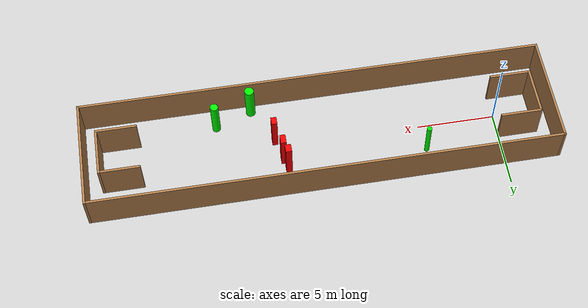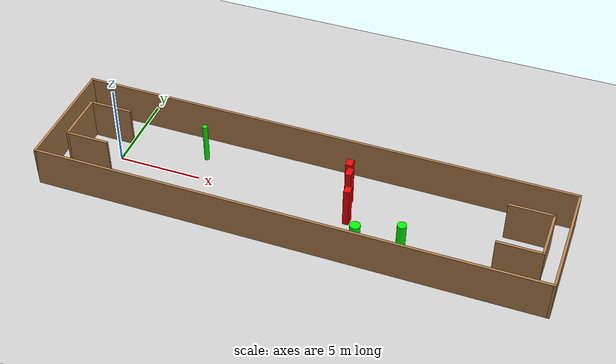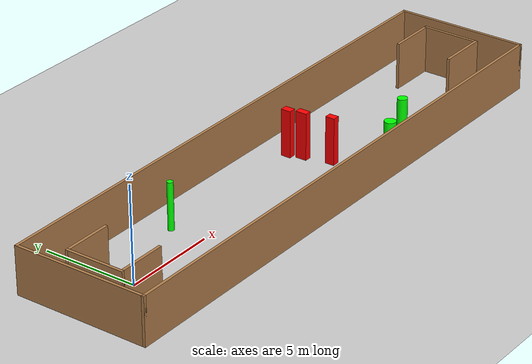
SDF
<sdf version="1.7">
 <world name="default">
  <light name="sun" type="directional">
   <pose>0 0 10 0 -0 0</pose>
   <diffuse>0.8 0.8 0.8 1</diffuse>
   <specular>0.2 0.2 0.2 1</specular>
   <attenuation>
    <range>1000</range>
    <constant>0.9</constant>
    <linear>0.01</linear>
    <quadratic>0.001</quadratic>
   </attenuation>
   <direction>-0.5 0.1 -0.9</direction>
   <spot><inner_angle>0</inner_angle><outer_angle>0</outer_angle><falloff>0</falloff></spot>
  </light>
  <model name="ground_plane">
   <static>1</static>
   <link name="link">
    <collision name="collision">
     <geometry><plane><normal>0 0 1</normal><size>100 100</size></plane></geometry>
     <surface>
      <contact><collide_bitmask>65535</collide_bitmask></contact>
      <friction><ode><mu>100</mu><mu2>50</mu2></ode></friction>
     </surface>
    </collision>
    <visual name="visual">
     <cast_shadows>0</cast_shadows>
     <geometry><plane><normal>0 0 1</normal><size>100 100</size></plane></geometry>
     <material>
      <script><uri>file://media/materials/scripts/gazebo.material</uri><name>Gazebo/Grey</name></script>
     </material>
    </visual>
   </link>
  </model>
  <gravity>0 0 -9.8</gravity>
  <magnetic_field>6e-06 2.3e-05 -4.2e-05</magnetic_field>
  <atmosphere type="adiabatic"/>
  <physics type="ode">
   <max_step_size>0.001</max_step_size>
   <real_time_factor>1</real_time_factor>
   <real_time_update_rate>1000</real_time_update_rate>
  </physics>
  <scene><ambient>0.4 0.4 0.4 1</ambient><background>0.7 0.7 0.7 1</background><shadows>1</shadows></scene>
  <spherical_coordinates>
   <surface_model>EARTH_WGS84</surface_model>
   <latitude_deg>0</latitude_deg>
   <longitude_deg>0</longitude_deg>
   <elevation>0</elevation>
   <heading_deg>0</heading_deg>
  </spherical_coordinates>
  <model name="my_base_walls">
   <link name="Wall_0">
    <collision name="Wall_0_Collision">
     <geometry><box><size>7.15 0.15 2.5</size></box></geometry>
     <pose>0 0 1.25 0 -0 0</pose>
    </collision>
    <visual name="Wall_0_Visual">
     <pose>0 0 1.25 0 -0 0</pose>
     <geometry><box><size>7.15 0.15 2.5</size></box></geometry>
     <material>
      <script><uri>file://media/materials/scripts/gazebo.material</uri><name>Gazebo/Wood</name></script>
      <ambient>1 1 1 1</ambient>
     </material>
     <meta><layer>0</layer></meta>
    </visual>
    <pose>-15 0 0 0 -0 1.5708</pose>
   </link>
   <link name="Wall_10">
    <collision name="Wall_10_Collision">
     <geometry><box><size>2.65 0.15 2.5</size></box></geometry>
     <pose>0 0 1.25 0 -0 0</pose>
    </collision>
    <visual name="Wall_10_Visual">
     <pose>0 0 1.25 0 -0 0</pose>
     <geometry><box><size>2.65 0.15 2.5</size></box></geometry>
     <material>
      <script><uri>file://media/materials/scripts/gazebo.material</uri><name>Gazebo/Wood</name></script>
      <ambient>1 1 1 1</ambient>
     </material>
     <meta><layer>0</layer></meta>
    </visual>
    <pose>-12.75 -1.5 0 0 -0 0</pose>
   </link>
   <link name="Wall_12">
    <collision name="Wall_12_Collision">
     <geometry><box><size>2.65 0.15 2.5</size></box></geometry>
     <pose>0 0 1.25 0 -0 0</pose>
    </collision>
    <visual name="Wall_12_Visual">
     <pose>0 0 1.25 0 -0 0</pose>
     <geometry><box><size>2.65 0.15 2.5</size></box></geometry>
     <material>
      <script><uri>file://media/materials/scripts/gazebo.material</uri><name>Gazebo/Wood</name></script>
      <ambient>1 1 1 1</ambient>
     </material>
     <meta><layer>0</layer></meta>
    </visual>
    <pose>-12.75 1.5 0 0 -0 0</pose>
   </link>
   <link name="Wall_14">
    <collision name="Wall_14_Collision">
     <geometry><box><size>3.15 0.15 2.5</size></box></geometry>
     <pose>0 0 1.25 0 -0 0</pose>
    </collision>
    <visual name="Wall_14_Visual">
     <pose>0 0 1.25 0 -0 0</pose>
     <geometry><box><size>3.15 0.15 2.5</size></box></geometry>
     <material>
      <script><uri>file://media/materials/scripts/gazebo.material</uri><name>Gazebo/Wood</name></script>
      <ambient>1 1 1 1</ambient>
     </material>
     <meta><layer>0</layer></meta>
    </visual>
    <pose>14 0 0 0 -0 -1.5708</pose>
   </link>
   <link name="Wall_15">
    <collision name="Wall_15_Collision">
     <geometry><box><size>2.65 0.15 2.5</size></box></geometry>
     <pose>0 0 1.25 0 -0 0</pose>
    </collision>
    <visual name="Wall_15_Visual">
     <pose>0 0 1.25 0 -0 0</pose>
     <geometry><box><size>2.65 0.15 2.5</size></box></geometry>
     <material>
      <script><uri>file://media/materials/scripts/gazebo.material</uri><name>Gazebo/Wood</name></script>
      <ambient>1 1 1 1</ambient>
     </material>
     <meta><layer>0</layer></meta>
    </visual>
    <pose>12.75 -1.5 0 0 -0 3.14159</pose>
   </link>
   <link name="Wall_17">
    <collision name="Wall_17_Collision">
     <geometry><box><size>2.65 0.15 2.5</size></box></geometry>
     <pose>0 0 1.25 0 -0 0</pose>
    </collision>
    <visual name="Wall_17_Visual">
     <pose>0 0 1.25 0 -0 0</pose>
     <geometry><box><size>2.65 0.15 2.5</size></box></geometry>
     <material>
      <script><uri>file://media/materials/scripts/gazebo.material</uri><name>Gazebo/Wood</name></script>
      <ambient>1 1 1 1</ambient>
     </material>
     <meta><layer>0</layer></meta>
    </visual>
    <pose>12.75 1.5 0 0 -0 3.14159</pose>
   </link>
   <link name="Wall_2">
    <collision name="Wall_2_Collision">
     <geometry><box><size>30.15 0.15 2.5</size></box></geometry>
     <pose>0 0 1.25 0 -0 0</pose>
    </collision>
    <visual name="Wall_2_Visual">
     <pose>0 0 1.25 0 -0 0</pose>
     <geometry><box><size>30.15 0.15 2.5</size></box></geometry>
     <material>
      <script><uri>file://media/materials/scripts/gazebo.material</uri><name>Gazebo/Wood</name></script>
      <ambient>1 1 1 1</ambient>
     </material>
     <meta><layer>0</layer></meta>
    </visual>
    <pose>-0 -3.5 0 0 -0 0</pose>
   </link>
   <link name="Wall_4">
    <collision name="Wall_4_Collision">
     <geometry><box><size>30.15 0.15 2.5</size></box></geometry>
     <pose>0 0 1.25 0 -0 0</pose>
    </collision>
    <visual name="Wall_4_Visual">
     <pose>0 0 1.25 0 -0 0</pose>
     <geometry><box><size>30.15 0.15 2.5</size></box></geometry>
     <material>
      <script><uri>file://media/materials/scripts/gazebo.material</uri><name>Gazebo/Wood</name></script>
      <ambient>1 1 1 1</ambient>
     </material>
     <meta><layer>0</layer></meta>
    </visual>
    <pose>-0 3.5 0 0 -0 0</pose>
   </link>
   <link name="Wall_6">
    <collision name="Wall_6_Collision">
     <geometry><box><size>7.15 0.15 2.5</size></box></geometry>
     <pose>0 0 1.25 0 -0 0</pose>
    </collision>
    <visual name="Wall_6_Visual">
     <pose>0 0 1.25 0 -0 0</pose>
     <geometry><box><size>7.15 0.15 2.5</size></box></geometry>
     <material>
      <script><uri>file://media/materials/scripts/gazebo.material</uri><name>Gazebo/Wood</name></script>
      <ambient>1 1 1 1</ambient>
     </material>
     <meta><layer>0</layer></meta>
    </visual>
    <pose>15 0 0 0 -0 -1.5708</pose>
   </link>
   <link name="Wall_9">
    <collision name="Wall_9_Collision">
     <geometry><box><size>3.15 0.15 2.5</size></box></geometry>
     <pose>0 0 1.25 0 -0 0</pose>
    </collision>
    <visual name="Wall_9_Visual">
     <pose>0 0 1.25 0 -0 0</pose>
     <geometry><box><size>3.15 0.15 2.5</size></box></geometry>
     <material>
      <script><uri>file://media/materials/scripts/gazebo.material</uri><name>Gazebo/Wood</name></script>
      <ambient>1 1 1 1</ambient>
     </material>
     <meta><layer>0</layer></meta>
    </visual>
    <pose>-14 0 0 0 -0 -1.5708</pose>
   </link>
   <static>1</static>
   <pose>11.5 0 0 0 -0 0</pose>
  </model>
  <model name="cylinder1">
   <static>1</static>
   <link name="link">
    <inertial>
     <mass>1</mass>
     <inertia><ixx>0.5</ixx><ixy>0</ixy><ixz>0</ixz><iyy>0.5</iyy><iyz>0</iyz><izz>1</izz></inertia>
    </inertial>
    <collision name="collision">
     <geometry><cylinder><radius>0.15469169097609312</radius><length>2.5</length></cylinder></geometry>
    </collision>
    <visual name="visual">
     <geometry><cylinder><radius>0.15469169097609312</radius><length>2.5</length></cylinder></geometry>
     <material>
      <ambient>0 1 0 1</ambient>
      <diffuse>0 1 0 1</diffuse>
      <specular>0.1 0.1 0.1 1</specular>
      <emissive>0 0 0 0</emissive>
     </material>
    </visual>
   </link>
   <pose>4.7878194010815545 1.7496242749236677 1.25 0 0 0</pose>
  </model>
  <model name="cylinder2">
   <static>1</static>
   <link name="link">
    <inertial>
     <mass>1</mass>
     <inertia><ixx>0.5</ixx><ixy>0</ixy><ixz>0</ixz><iyy>0.5</iyy><iyz>0</iyz><izz>1</izz></inertia>
    </inertial>
    <collision name="collision">
     <geometry><cylinder><radius>0.29993115730866693</radius><length>2.5</length></cylinder></geometry>
    </collision>
    <visual name="visual">
     <geometry><cylinder><radius>0.29993115730866693</radius><length>2.5</length></cylinder></geometry>
     <material>
      <ambient>0 1 0 1</ambient>
      <diffuse>0 1 0 1</diffuse>
      <specular>0.1 0.1 0.1 1</specular>
      <emissive>0 0 0 0</emissive>
     </material>
    </visual>
   </link>
   <pose>15.596760338910716 -2.929256186164744 1.25 0 0 0</pose>
  </model>
  <model name="cylinder3">
   <static>1</static>
   <link name="link">
    <inertial>
     <mass>1</mass>
     <inertia><ixx>0.5</ixx><ixy>0</ixy><ixz>0</ixz><iyy>0.5</iyy><iyz>0</iyz><izz>1</izz></inertia>
    </inertial>
    <collision name="collision">
     <geometry><cylinder><radius>0.2619519686092001</radius><length>2.5</length></cylinder></geometry>
    </collision>
    <visual name="visual">
     <geometry><cylinder><radius>0.2619519686092001</radius><length>2.5</length></cylinder></geometry>
     <material>
      <ambient>0 1 0 1</ambient>
      <diffuse>0 1 0 1</diffuse>
      <specular>0.1 0.1 0.1 1</specular>
      <emissive>0 0 0 0</emissive>
     </material>
    </visual>
   </link>
   <pose>17.954861868958346 -2.0584274008592005 1.25 0 0 0</pose>
  </model>
  <model name="box1">
   <static>1</static>
   <link name="link">
    <inertial>
     <mass>1</mass>
     <inertia><ixx>0.083</ixx><ixy>0</ixy><ixz>0</ixz><iyy>0.083</iyy><iyz>0</iyz><izz>0.083</izz></inertia>
    </inertial>
    <collision name="collision">
     <geometry><box><size>0.3851435760443531 0.5283081053708066 2.5</size></box></geometry>
    </collision>
    <visual name="visual">
     <geometry><box><size>0.3851435760443531 0.5283081053708066 2.5</size></box></geometry>
     <material>
      <ambient>1 0 0 1</ambient>
      <diffuse>1 0 0 1</diffuse>
      <specular>0.1 0.1 0.1 1</specular>
      <emissive>0 0 0 0</emissive>
     </material>
    </visual>
    <sensor name="my_contact" type="contact">
     <contact><collision>box_collision</collision><topic>__default_topic__</topic></contact>
    </sensor>
   </link>
   <pose>13.752408805416016 1.711234982876876 1.25 0 0 0</pose>
  </model>
  <model name="box2">
   <static>1</static>
   <link name="link">
    <inertial>
     <mass>1</mass>
     <inertia><ixx>0.083</ixx><ixy>0</ixy><ixz>0</ixz><iyy>0.083</iyy><iyz>0</iyz><izz>0.083</izz></inertia>
    </inertial>
    <collision name="collision">
     <geometry><box><size>0.36292161045442073 0.4954618395345521 2.5</size></box></geometry>
    </collision>
    <visual name="visual">
     <geometry><box><size>0.36292161045442073 0.4954618395345521 2.5</size></box></geometry>
     <material>
      <ambient>1 0 0 1</ambient>
      <diffuse>1 0 0 1</diffuse>
      <specular>0.1 0.1 0.1 1</specular>
      <emissive>0 0 0 0</emissive>
     </material>
    </visual>
    <sensor name="my_contact" type="contact">
     <contact><collision>box_collision</collision><topic>__default_topic__</topic></contact>
    </sensor>
   </link>
   <pose>14.350759811546231 -0.4397128749534507 1.25 0 0 0</pose>
  </model>
  <model name="box3">
   <static>1</static>
   <link name="link">
    <inertial>
     <mass>1</mass>
     <inertia><ixx>0.083</ixx><ixy>0</ixy><ixz>0</ixz><iyy>0.083</iyy><iyz>0</iyz><izz>0.083</izz></inertia>
    </inertial>
    <collision name="collision">
     <geometry><box><size>0.3557935153932941 0.5990902211995335 2.5</size></box></geometry>
    </collision>
    <visual name="visual">
     <geometry><box><size>0.3557935153932941 0.5990902211995335 2.5</size></box></geometry>
     <material>
      <ambient>1 0 0 1</ambient>
      <diffuse>1 0 0 1</diffuse>
      <specular>0.1 0.1 0.1 1</specular>
      <emissive>0 0 0 0</emissive>
     </material>
    </visual>
    <sensor name="my_contact" type="contact">
     <contact><collision>box_collision</collision><topic>__default_topic__</topic></contact>
    </sensor>
   </link>
   <pose>13.981527823237373 0.9853883325630122 1.25 0 0 0</pose>
  </model>
 </world>
</sdf>
